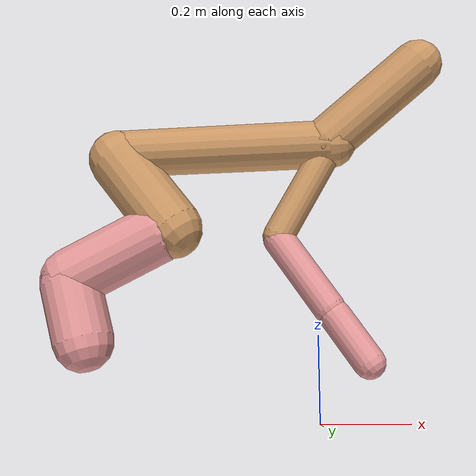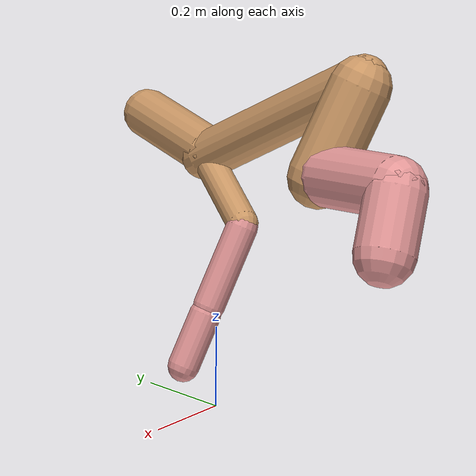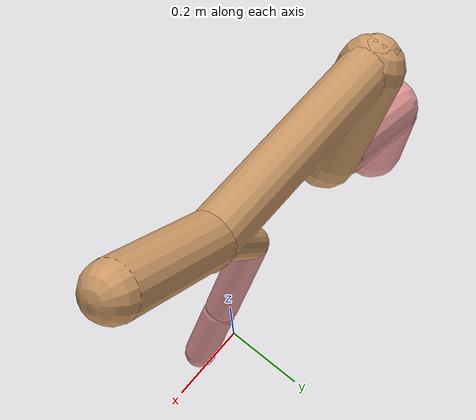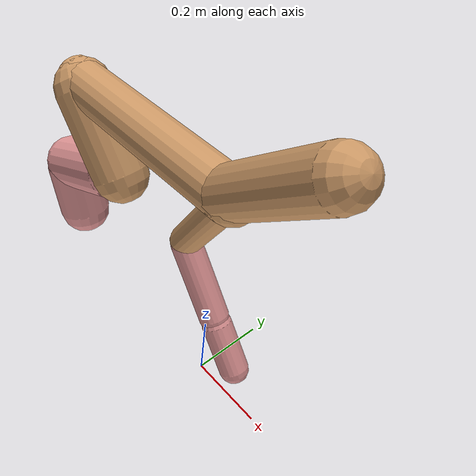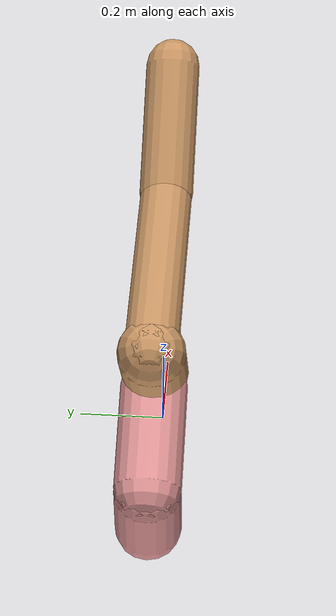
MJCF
<mujoco model="cheetah">
  <compiler angle="radian" coordinate="local" inertiafromgeom="true" settotalmass="14" />
  <default>
    <joint armature=".1" damping=".01" limited="true" solimplimit="0 .8 .03" solreflimit=".02 1" stiffness="8" />
    <geom conaffinity="0" condim="3" contype="1" friction="0.8 .1 .1" rgba="0.8 0.6 .4 1" solimp="0.0 0.8 0.01" solref="0.02 1" />
    <motor ctrllimited="true" ctrlrange="-1 1" />
  </default>
  <size nstack="300000" nuser_geom="1" />
  <option gravity="0 0 -9.81" timestep="0.01" />
  <worldbody>
    <body name="torso" pos="0.0 0.0 0.6640199923131122">
      <joint armature="0" axis="1 0 0" damping="0" limited="false" name="ignorex" pos="0 0 0" stiffness="0" type="slide" />
      <joint armature="0" axis="0 0 1" damping="0" limited="false" name="ignorez" pos="0 0 0" stiffness="0" type="slide" />
      <joint armature="0" axis="0 1 0" damping="0" limited="false" name="ignorey" pos="0 0 0" stiffness="0" type="hinge" />
      <geom fromto="-0.5 0.0 0.0 0.04180121802216891 0.0 0.0" name="torso" size="0.05808042227849455" type="capsule" />
      <geom axisangle="0 1 0 .87" name="head" pos="0.14180121802216894 0.0 0.1" size="0.06018343060493146 0.15" type="capsule" />

      <body name="bthigh" pos="-.5 0 0">
        <joint axis="0 1 0" damping="6" name="bthigh" pos="0 0 0" range="-.52 1.05" stiffness="240" type="hinge" />
        <geom axisangle="0 1 0 -3.8" name="bthigh" pos="0.08240746586379952 0.0 -0.10712970562293936" size="0.07390666802847969 0.1161460986654007" type="capsule" />
        <body name="bshin" pos="0.12481493172759903 0.0 -0.2042594112458787">
          <joint axis="0 1 0" damping="4.5" name="bshin" pos="0 0 0" range="-.785 .785" stiffness="180" type="hinge" />
          <geom axisangle="0 1 0 -2.03" name="bshin" pos="-0.11330236491024721 0.0 -0.05665118245512361" rgba="0.9 0.6 0.6 1" size="0.07390666802847969 0.12015113655041451" type="capsule" />
          <body name="bfoot" pos="-0.22660472982049443 0.0 -0.11330236491024721">
            <joint axis="0 1 0" damping="3" name="bfoot" pos="0 0 0" range="-.4 .785" stiffness="120" type="hinge" />
            <geom axisangle="0 1 0 -.27" name="bfoot" pos="0.024473153807861067 0.0 -0.0791298639787508" rgba="0.9 0.6 0.6 1" size="0.07390666802847969 0.07529471223825977" type="capsule" />
            <inertial mass="10" />
          </body>
        </body>
      </body>
      <body name="fthigh" pos="0.04180121802216896 0.0 0.0">
        <joint axis="0 1 0" damping="4.5" name="fthigh" pos="0 0 0" range="-1.5 0.8" stiffness="180" type="hinge" />
        <geom axisangle="0 1 0 .52" name="fthigh" pos="-0.06747782982383156 0.0 -0.11567627969799694" size="0.03772421520823795 0.1279944131565313" type="capsule" />
        <body name="fshin" pos="-0.13495565964766312 0.0 -0.2313525593959939">
          <joint axis="0 1 0" damping="3" name="fshin" pos="0 0 0" range="-1.2 1.1" stiffness="120" type="hinge" />
          <geom axisangle="0 1 0 -.6" name="fshin" pos="0.06266423515631847 0.0 -0.0867658640625948" rgba="0.9 0.6 0.6 1" size="0.03772421520823795 0.10201058492174675" type="capsule" />
          <body name="ffoot" pos="0.12532847031263694 0.0 -0.1735317281251896">
            <joint axis="0 1 0" damping="1.5" name="ffoot" pos="0 0 0" range="-3.1 -0.3" stiffness="60" type="hinge" />
            <geom axisangle="0 1 0 -.6" name="ffoot" pos="0.04357536363969228 0.0 -0.06778389899507688" rgba="0.9 0.6 0.6 1" size="0.03772421520823795 0.06736548060870069" type="capsule" />
            <inertial mass="10" />
          </body>
        </body>
      </body>
    </body>
  </worldbody>
  <actuator>
    <motor gear="120" joint="bthigh" name="bthigh" />
    <motor gear="90" joint="bshin" name="bshin" />
    <motor gear="60" joint="bfoot" name="bfoot" />
    <motor gear="120" joint="fthigh" name="fthigh" />
    <motor gear="60" joint="fshin" name="fshin" />
    <motor gear="30" joint="ffoot" name="ffoot" />
  </actuator>
</mujoco>
